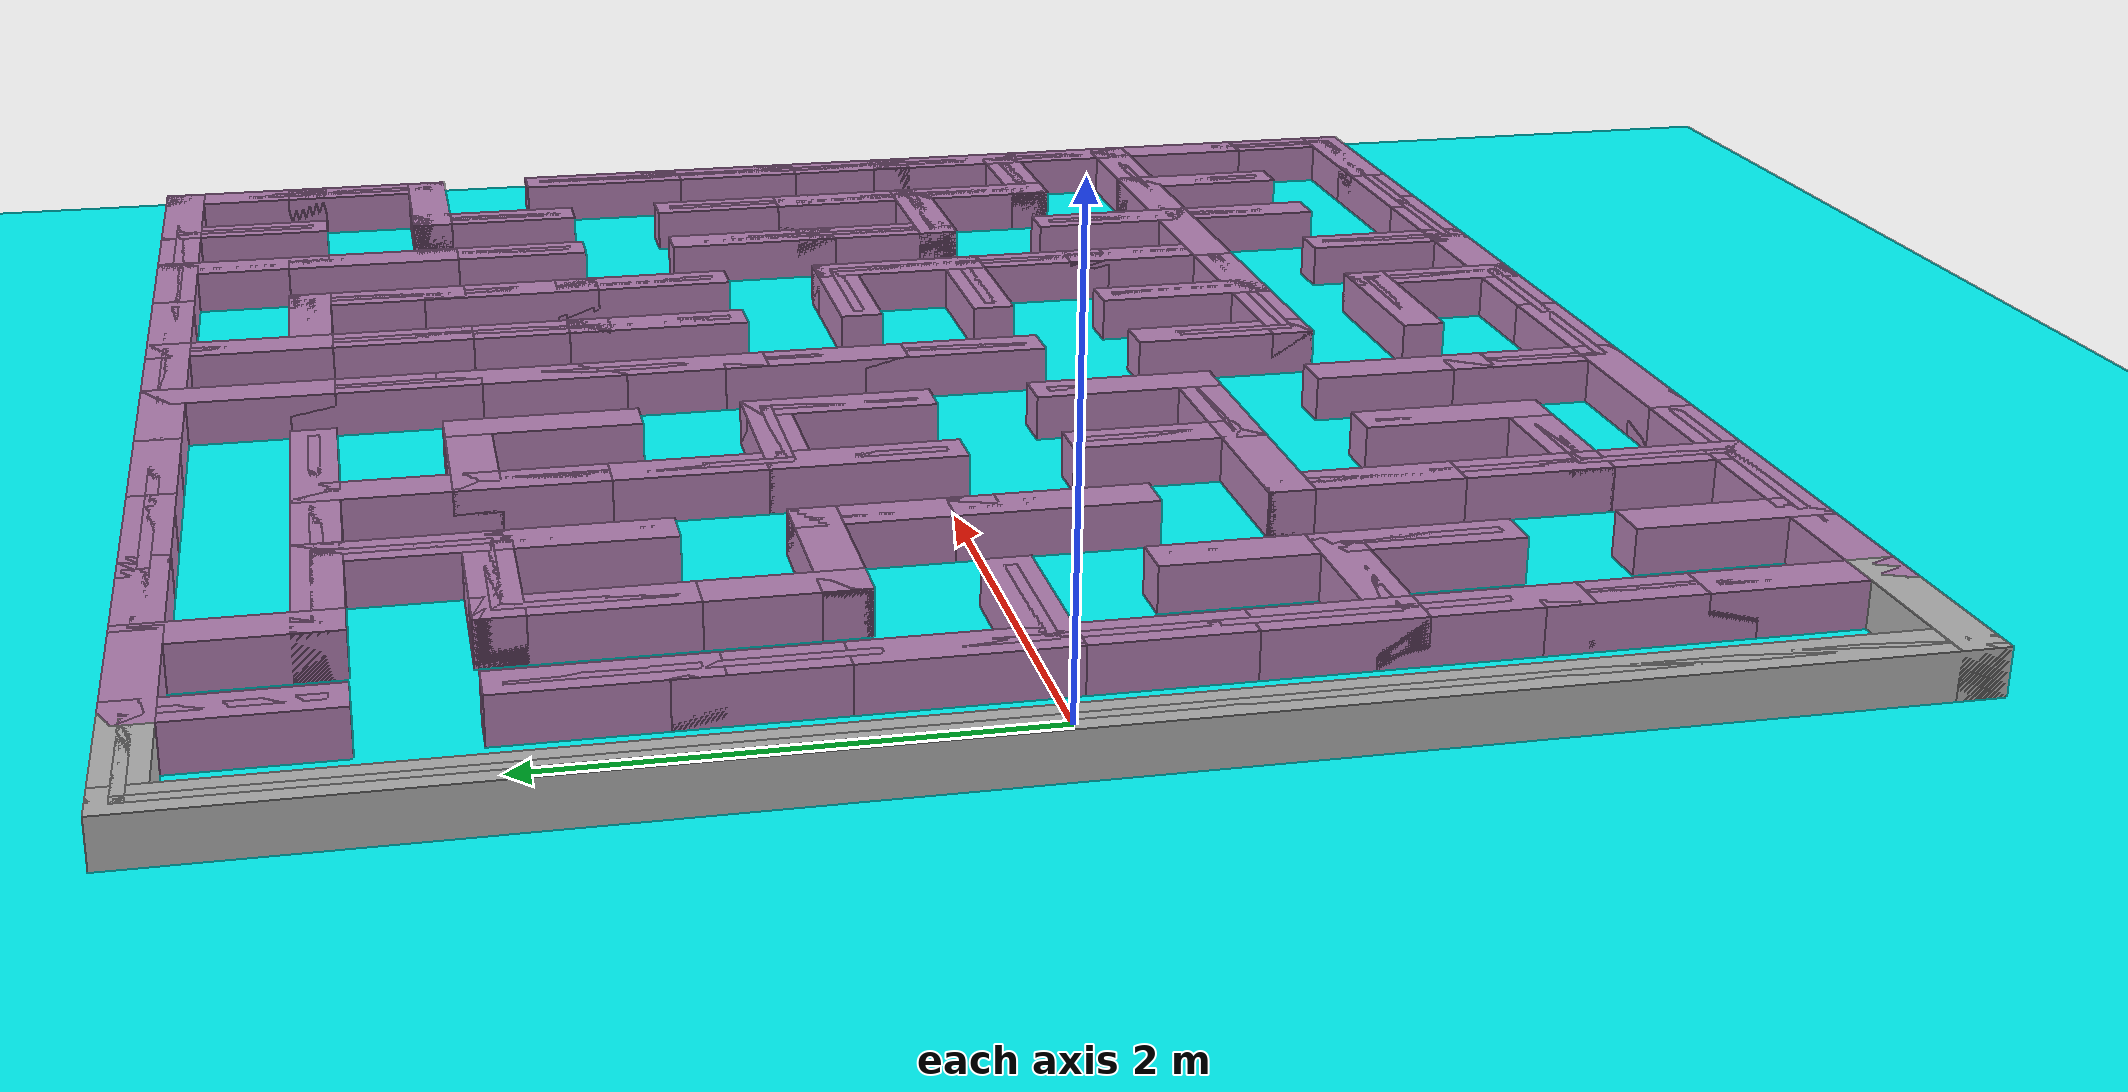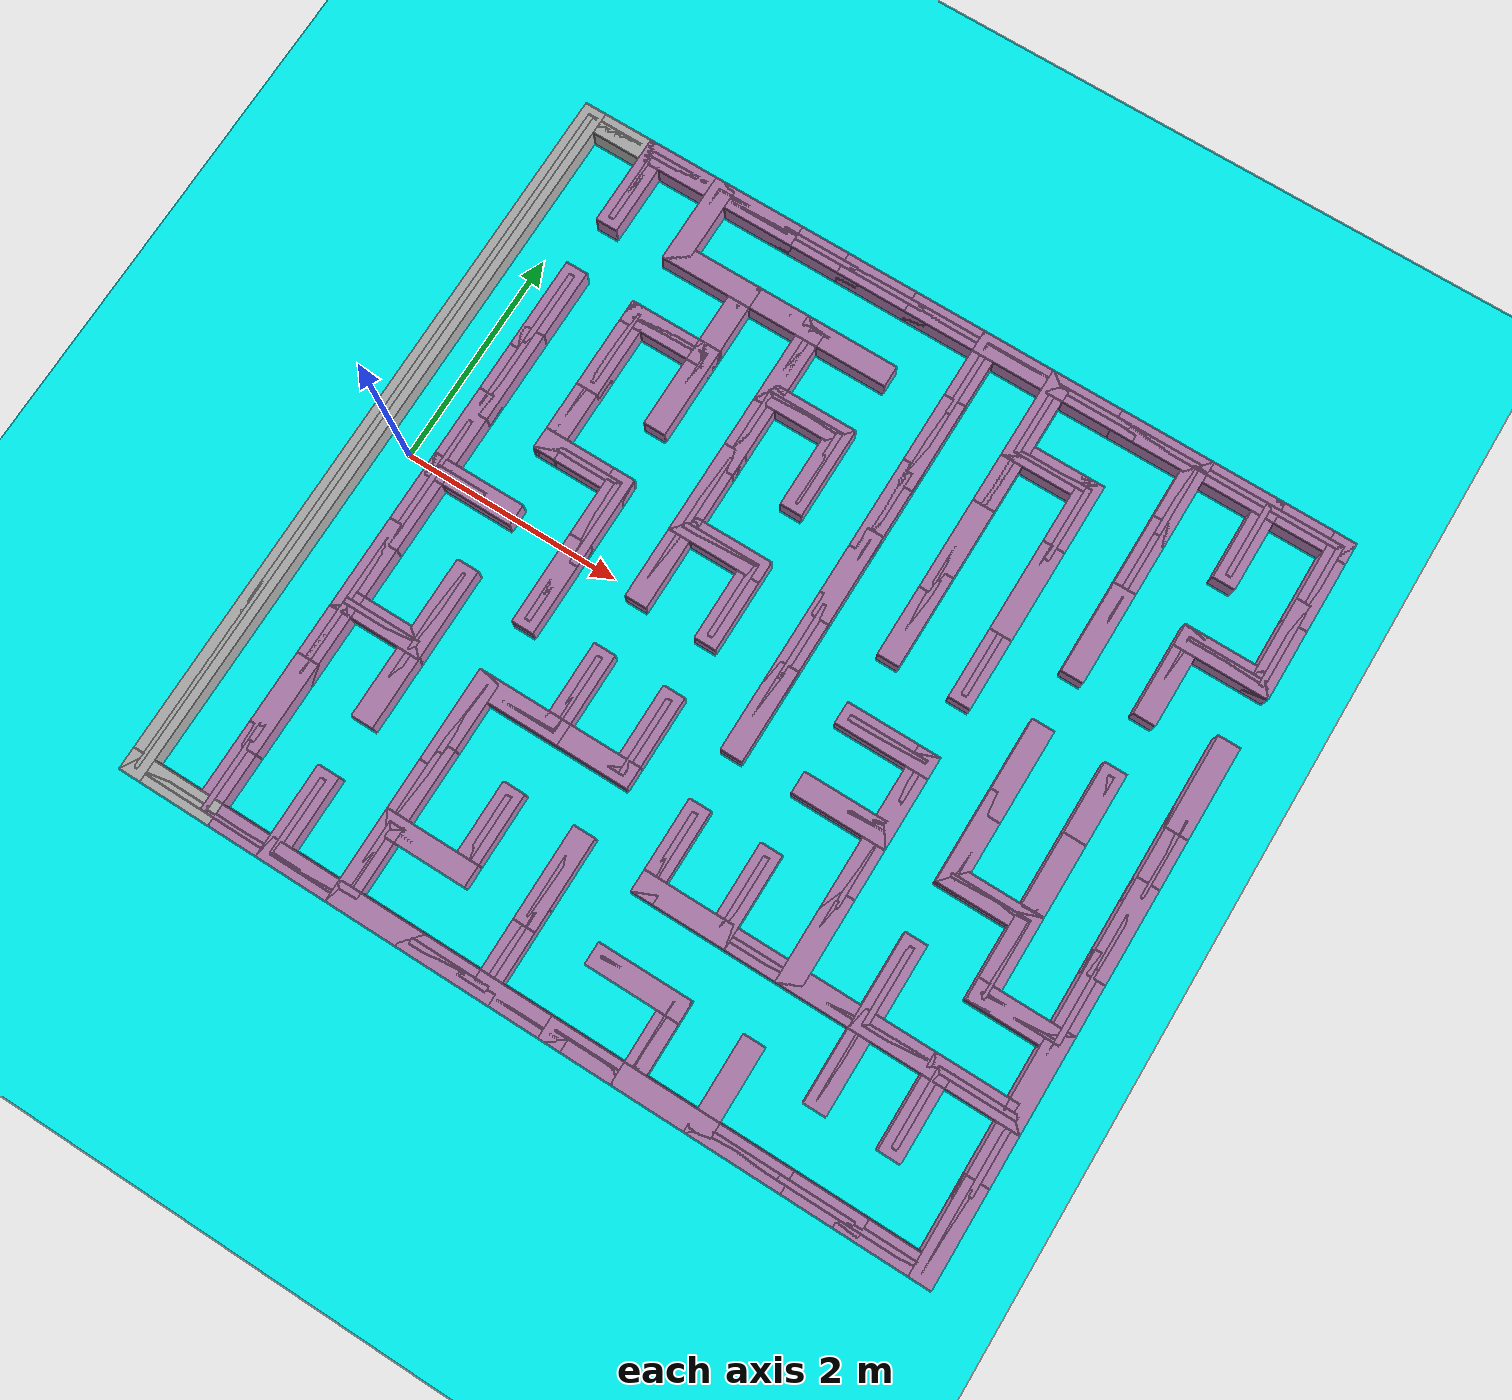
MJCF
<mujoco model="maze">
  <visual>
    <headlight diffuse="0.5 0.5 0.5" ambient="0.3 0.3 0.3" specular="0 0 0"/>
    <rgba haze="0.15 0.25 0.35 1"/>
    <global azimuth="0" elevation="0"/>
  </visual>

  <asset>
    <texture type="skybox" builtin="gradient" rgb1="0.3 0.5 0.7" rgb2="0 0 0" width="512" height="3072"/>
    <texture type="2d" name="groundplane" builtin="checker" mark="edge" rgb1="0.2 0.3 0.4" rgb2="0.1 0.2 0.3" markrgb="0.8 0.8 0.8" width="500" height="500"/>
    <material name="groundplane" texture="groundplane" texuniform="true" texrepeat="5 5" reflectance="0.2"/>
  </asset>
  <worldbody>
    <light pos="0.000 0.000 6.500" dir="0 0 -1"/>
    <light pos="0.325 3.250 6.500" dir="0 0 -1"/>
    <light pos="6.825 3.250 6.500" dir="0 0 -1"/>
    <light pos="0.325 -3.250 6.500" dir="0 0 -1"/>
    <light pos="6.825 -3.250 6.500" dir="0 0 -1"/>
    <light pos="3.575 0.000 6.500" dir="0 0 -1"/>
    <geom name="floor" type="plane" size="7.507500000000001 7.507500000000001 0.1" rgba="0 1 1 1"/>
    <geom name="maze_wall_0" type="box" pos="0.325 2.925 0.100" size="0.025 0.350 0.100" rgba="0.7 0.5 0.7 1.0"/>
    <geom name="maze_wall_1" type="box" pos="0.325 1.625 0.100" size="0.025 0.350 0.100" rgba="0.7 0.5 0.7 1.0"/>
    <geom name="maze_wall_2" type="box" pos="0.325 0.975 0.100" size="0.025 0.350 0.100" rgba="0.7 0.5 0.7 1.0"/>
    <geom name="maze_wall_3" type="box" pos="0.325 0.325 0.100" size="0.025 0.350 0.100" rgba="0.7 0.5 0.7 1.0"/>
    <geom name="maze_wall_4" type="box" pos="0.325 -0.325 0.100" size="0.025 0.350 0.100" rgba="0.7 0.5 0.7 1.0"/>
    <geom name="maze_wall_5" type="box" pos="0.325 -0.975 0.100" size="0.025 0.350 0.100" rgba="0.7 0.5 0.7 1.0"/>
    <geom name="maze_wall_6" type="box" pos="0.325 -1.625 0.100" size="0.025 0.350 0.100" rgba="0.7 0.5 0.7 1.0"/>
    <geom name="maze_wall_7" type="box" pos="0.325 -2.275 0.100" size="0.025 0.350 0.100" rgba="0.7 0.5 0.7 1.0"/>
    <geom name="maze_wall_8" type="box" pos="0.325 -2.925 0.100" size="0.025 0.350 0.100" rgba="0.7 0.5 0.7 1.0"/>
    <geom name="maze_wall_9" type="box" pos="0.975 2.925 0.100" size="0.025 0.350 0.100" rgba="0.7 0.5 0.7 1.0"/>
    <geom name="maze_wall_10" type="box" pos="0.975 1.625 0.100" size="0.025 0.350 0.100" rgba="0.7 0.5 0.7 1.0"/>
    <geom name="maze_wall_11" type="box" pos="0.975 0.975 0.100" size="0.025 0.350 0.100" rgba="0.7 0.5 0.7 1.0"/>
    <geom name="maze_wall_12" type="box" pos="0.975 -0.975 0.100" size="0.025 0.350 0.100" rgba="0.7 0.5 0.7 1.0"/>
    <geom name="maze_wall_13" type="box" pos="0.975 -1.625 0.100" size="0.025 0.350 0.100" rgba="0.7 0.5 0.7 1.0"/>
    <geom name="maze_wall_14" type="box" pos="0.975 -2.925 0.100" size="0.025 0.350 0.100" rgba="0.7 0.5 0.7 1.0"/>
    <geom name="maze_wall_15" type="box" pos="1.625 2.275 0.100" size="0.025 0.350 0.100" rgba="0.7 0.5 0.7 1.0"/>
    <geom name="maze_wall_16" type="box" pos="1.625 1.625 0.100" size="0.025 0.350 0.100" rgba="0.7 0.5 0.7 1.0"/>
    <geom name="maze_wall_17" type="box" pos="1.625 0.325 0.100" size="0.025 0.350 0.100" rgba="0.7 0.5 0.7 1.0"/>
    <geom name="maze_wall_18" type="box" pos="1.625 -0.325 0.100" size="0.025 0.350 0.100" rgba="0.7 0.5 0.7 1.0"/>
    <geom name="maze_wall_19" type="box" pos="1.625 -1.625 0.100" size="0.025 0.350 0.100" rgba="0.7 0.5 0.7 1.0"/>
    <geom name="maze_wall_20" type="box" pos="1.625 -2.275 0.100" size="0.025 0.350 0.100" rgba="0.7 0.5 0.7 1.0"/>
    <geom name="maze_wall_21" type="box" pos="1.625 -2.925 0.100" size="0.025 0.350 0.100" rgba="0.7 0.5 0.7 1.0"/>
    <geom name="maze_wall_22" type="box" pos="2.275 2.275 0.100" size="0.025 0.350 0.100" rgba="0.7 0.5 0.7 1.0"/>
    <geom name="maze_wall_23" type="box" pos="2.275 1.625 0.100" size="0.025 0.350 0.100" rgba="0.7 0.5 0.7 1.0"/>
    <geom name="maze_wall_24" type="box" pos="2.275 0.975 0.100" size="0.025 0.350 0.100" rgba="0.7 0.5 0.7 1.0"/>
    <geom name="maze_wall_25" type="box" pos="2.275 0.325 0.100" size="0.025 0.350 0.100" rgba="0.7 0.5 0.7 1.0"/>
    <geom name="maze_wall_26" type="box" pos="2.275 -0.975 0.100" size="0.025 0.350 0.100" rgba="0.7 0.5 0.7 1.0"/>
    <geom name="maze_wall_27" type="box" pos="2.275 -2.275 0.100" size="0.025 0.350 0.100" rgba="0.7 0.5 0.7 1.0"/>
    <geom name="maze_wall_28" type="box" pos="2.925 1.625 0.100" size="0.025 0.350 0.100" rgba="0.7 0.5 0.7 1.0"/>
    <geom name="maze_wall_29" type="box" pos="2.925 0.325 0.100" size="0.025 0.350 0.100" rgba="0.7 0.5 0.7 1.0"/>
    <geom name="maze_wall_30" type="box" pos="2.925 -0.975 0.100" size="0.025 0.350 0.100" rgba="0.7 0.5 0.7 1.0"/>
    <geom name="maze_wall_31" type="box" pos="2.925 -2.275 0.100" size="0.025 0.350 0.100" rgba="0.7 0.5 0.7 1.0"/>
    <geom name="maze_wall_32" type="box" pos="2.925 -2.925 0.100" size="0.025 0.350 0.100" rgba="0.7 0.5 0.7 1.0"/>
    <geom name="maze_wall_33" type="box" pos="3.575 2.925 0.100" size="0.025 0.350 0.100" rgba="0.7 0.5 0.7 1.0"/>
    <geom name="maze_wall_34" type="box" pos="3.575 2.275 0.100" size="0.025 0.350 0.100" rgba="0.7 0.5 0.7 1.0"/>
    <geom name="maze_wall_35" type="box" pos="3.575 1.625 0.100" size="0.025 0.350 0.100" rgba="0.7 0.5 0.7 1.0"/>
    <geom name="maze_wall_36" type="box" pos="3.575 0.975 0.100" size="0.025 0.350 0.100" rgba="0.7 0.5 0.7 1.0"/>
    <geom name="maze_wall_37" type="box" pos="3.575 0.325 0.100" size="0.025 0.350 0.100" rgba="0.7 0.5 0.7 1.0"/>
    <geom name="maze_wall_38" type="box" pos="3.575 -0.325 0.100" size="0.025 0.350 0.100" rgba="0.7 0.5 0.7 1.0"/>
    <geom name="maze_wall_39" type="box" pos="3.575 -1.625 0.100" size="0.025 0.350 0.100" rgba="0.7 0.5 0.7 1.0"/>
    <geom name="maze_wall_40" type="box" pos="4.225 2.925 0.100" size="0.025 0.350 0.100" rgba="0.7 0.5 0.7 1.0"/>
    <geom name="maze_wall_41" type="box" pos="4.225 2.275 0.100" size="0.025 0.350 0.100" rgba="0.7 0.5 0.7 1.0"/>
    <geom name="maze_wall_42" type="box" pos="4.225 1.625 0.100" size="0.025 0.350 0.100" rgba="0.7 0.5 0.7 1.0"/>
    <geom name="maze_wall_43" type="box" pos="4.225 0.975 0.100" size="0.025 0.350 0.100" rgba="0.7 0.5 0.7 1.0"/>
    <geom name="maze_wall_44" type="box" pos="4.225 -1.625 0.100" size="0.025 0.350 0.100" rgba="0.7 0.5 0.7 1.0"/>
    <geom name="maze_wall_45" type="box" pos="4.225 -2.925 0.100" size="0.025 0.350 0.100" rgba="0.7 0.5 0.7 1.0"/>
    <geom name="maze_wall_46" type="box" pos="4.875 2.275 0.100" size="0.025 0.350 0.100" rgba="0.7 0.5 0.7 1.0"/>
    <geom name="maze_wall_47" type="box" pos="4.875 1.625 0.100" size="0.025 0.350 0.100" rgba="0.7 0.5 0.7 1.0"/>
    <geom name="maze_wall_48" type="box" pos="4.875 0.975 0.100" size="0.025 0.350 0.100" rgba="0.7 0.5 0.7 1.0"/>
    <geom name="maze_wall_49" type="box" pos="4.875 -0.325 0.100" size="0.025 0.350 0.100" rgba="0.7 0.5 0.7 1.0"/>
    <geom name="maze_wall_50" type="box" pos="4.875 -0.975 0.100" size="0.025 0.350 0.100" rgba="0.7 0.5 0.7 1.0"/>
    <geom name="maze_wall_51" type="box" pos="4.875 -1.625 0.100" size="0.025 0.350 0.100" rgba="0.7 0.5 0.7 1.0"/>
    <geom name="maze_wall_52" type="box" pos="4.875 -2.925 0.100" size="0.025 0.350 0.100" rgba="0.7 0.5 0.7 1.0"/>
    <geom name="maze_wall_53" type="box" pos="5.525 2.925 0.100" size="0.025 0.350 0.100" rgba="0.7 0.5 0.7 1.0"/>
    <geom name="maze_wall_54" type="box" pos="5.525 2.275 0.100" size="0.025 0.350 0.100" rgba="0.7 0.5 0.7 1.0"/>
    <geom name="maze_wall_55" type="box" pos="5.525 1.625 0.100" size="0.025 0.350 0.100" rgba="0.7 0.5 0.7 1.0"/>
    <geom name="maze_wall_56" type="box" pos="5.525 0.325 0.100" size="0.025 0.350 0.100" rgba="0.7 0.5 0.7 1.0"/>
    <geom name="maze_wall_57" type="box" pos="5.525 -0.325 0.100" size="0.025 0.350 0.100" rgba="0.7 0.5 0.7 1.0"/>
    <geom name="maze_wall_58" type="box" pos="5.525 -1.625 0.100" size="0.025 0.350 0.100" rgba="0.7 0.5 0.7 1.0"/>
    <geom name="maze_wall_59" type="box" pos="5.525 -2.275 0.100" size="0.025 0.350 0.100" rgba="0.7 0.5 0.7 1.0"/>
    <geom name="maze_wall_60" type="box" pos="6.175 2.925 0.100" size="0.025 0.350 0.100" rgba="0.7 0.5 0.7 1.0"/>
    <geom name="maze_wall_61" type="box" pos="6.175 1.625 0.100" size="0.025 0.350 0.100" rgba="0.7 0.5 0.7 1.0"/>
    <geom name="maze_wall_62" type="box" pos="6.175 0.325 0.100" size="0.025 0.350 0.100" rgba="0.7 0.5 0.7 1.0"/>
    <geom name="maze_wall_63" type="box" pos="6.175 -0.325 0.100" size="0.025 0.350 0.100" rgba="0.7 0.5 0.7 1.0"/>
    <geom name="maze_wall_64" type="box" pos="6.175 -0.975 0.100" size="0.025 0.350 0.100" rgba="0.7 0.5 0.7 1.0"/>
    <geom name="maze_wall_65" type="box" pos="6.175 -2.275 0.100" size="0.025 0.350 0.100" rgba="0.7 0.5 0.7 1.0"/>
    <geom name="maze_wall_66" type="box" pos="6.825 2.925 0.100" size="0.025 0.350 0.100" rgba="0.7 0.5 0.7 1.0"/>
    <geom name="maze_wall_67" type="box" pos="6.825 2.275 0.100" size="0.025 0.350 0.100" rgba="0.7 0.5 0.7 1.0"/>
    <geom name="maze_wall_68" type="box" pos="6.825 0.975 0.100" size="0.025 0.350 0.100" rgba="0.7 0.5 0.7 1.0"/>
    <geom name="maze_wall_69" type="box" pos="6.825 0.325 0.100" size="0.025 0.350 0.100" rgba="0.7 0.5 0.7 1.0"/>
    <geom name="maze_wall_70" type="box" pos="6.825 -0.325 0.100" size="0.025 0.350 0.100" rgba="0.7 0.5 0.7 1.0"/>
    <geom name="maze_wall_71" type="box" pos="6.825 -0.975 0.100" size="0.025 0.350 0.100" rgba="0.7 0.5 0.7 1.0"/>
    <geom name="maze_wall_72" type="box" pos="6.825 -1.625 0.100" size="0.025 0.350 0.100" rgba="0.7 0.5 0.7 1.0"/>
    <geom name="maze_wall_73" type="box" pos="6.825 -2.275 0.100" size="0.025 0.350 0.100" rgba="0.7 0.5 0.7 1.0"/>
    <geom name="maze_wall_74" type="box" pos="6.825 -2.925 0.100" size="0.025 0.350 0.100" rgba="0.7 0.5 0.7 1.0"/>
    <geom name="maze_wall_75" type="box" pos="0.650 3.250 0.100" size="0.350 0.025 0.100" rgba="0.7 0.5 0.7 1.0"/>
    <geom name="maze_wall_76" type="box" pos="0.650 0.000 0.100" size="0.350 0.025 0.100" rgba="0.7 0.5 0.7 1.0"/>
    <geom name="maze_wall_77" type="box" pos="0.650 -1.300 0.100" size="0.350 0.025 0.100" rgba="0.7 0.5 0.7 1.0"/>
    <geom name="maze_wall_78" type="box" pos="0.650 -3.250 0.100" size="0.350 0.025 0.100" rgba="0.7 0.5 0.7 1.0"/>
    <geom name="maze_wall_79" type="box" pos="1.300 3.250 0.100" size="0.350 0.025 0.100" rgba="0.7 0.5 0.7 1.0"/>
    <geom name="maze_wall_80" type="box" pos="1.300 2.600 0.100" size="0.350 0.025 0.100" rgba="0.7 0.5 0.7 1.0"/>
    <geom name="maze_wall_81" type="box" pos="1.300 1.950 0.100" size="0.350 0.025 0.100" rgba="0.7 0.5 0.7 1.0"/>
    <geom name="maze_wall_82" type="box" pos="1.300 0.650 0.100" size="0.350 0.025 0.100" rgba="0.7 0.5 0.7 1.0"/>
    <geom name="maze_wall_83" type="box" pos="1.300 -3.250 0.100" size="0.350 0.025 0.100" rgba="0.7 0.5 0.7 1.0"/>
    <geom name="maze_wall_84" type="box" pos="1.950 3.250 0.100" size="0.350 0.025 0.100" rgba="0.7 0.5 0.7 1.0"/>
    <geom name="maze_wall_85" type="box" pos="1.950 2.600 0.100" size="0.350 0.025 0.100" rgba="0.7 0.5 0.7 1.0"/>
    <geom name="maze_wall_86" type="box" pos="1.950 -1.300 0.100" size="0.350 0.025 0.100" rgba="0.7 0.5 0.7 1.0"/>
    <geom name="maze_wall_87" type="box" pos="1.950 -2.600 0.100" size="0.350 0.025 0.100" rgba="0.7 0.5 0.7 1.0"/>
    <geom name="maze_wall_88" type="box" pos="1.950 -3.250 0.100" size="0.350 0.025 0.100" rgba="0.7 0.5 0.7 1.0"/>
    <geom name="maze_wall_89" type="box" pos="2.600 3.250 0.100" size="0.350 0.025 0.100" rgba="0.7 0.5 0.7 1.0"/>
    <geom name="maze_wall_90" type="box" pos="2.600 2.600 0.100" size="0.350 0.025 0.100" rgba="0.7 0.5 0.7 1.0"/>
    <geom name="maze_wall_91" type="box" pos="2.600 1.950 0.100" size="0.350 0.025 0.100" rgba="0.7 0.5 0.7 1.0"/>
    <geom name="maze_wall_92" type="box" pos="2.600 0.650 0.100" size="0.350 0.025 0.100" rgba="0.7 0.5 0.7 1.0"/>
    <geom name="maze_wall_93" type="box" pos="2.600 -1.300 0.100" size="0.350 0.025 0.100" rgba="0.7 0.5 0.7 1.0"/>
    <geom name="maze_wall_94" type="box" pos="2.600 -3.250 0.100" size="0.350 0.025 0.100" rgba="0.7 0.5 0.7 1.0"/>
    <geom name="maze_wall_95" type="box" pos="3.250 3.250 0.100" size="0.350 0.025 0.100" rgba="0.7 0.5 0.7 1.0"/>
    <geom name="maze_wall_96" type="box" pos="3.250 -3.250 0.100" size="0.350 0.025 0.100" rgba="0.7 0.5 0.7 1.0"/>
    <geom name="maze_wall_97" type="box" pos="3.900 3.250 0.100" size="0.350 0.025 0.100" rgba="0.7 0.5 0.7 1.0"/>
    <geom name="maze_wall_98" type="box" pos="3.900 -1.950 0.100" size="0.350 0.025 0.100" rgba="0.7 0.5 0.7 1.0"/>
    <geom name="maze_wall_99" type="box" pos="3.900 -2.600 0.100" size="0.350 0.025 0.100" rgba="0.7 0.5 0.7 1.0"/>
    <geom name="maze_wall_100" type="box" pos="3.900 -3.250 0.100" size="0.350 0.025 0.100" rgba="0.7 0.5 0.7 1.0"/>
    <geom name="maze_wall_101" type="box" pos="4.550 3.250 0.100" size="0.350 0.025 0.100" rgba="0.7 0.5 0.7 1.0"/>
    <geom name="maze_wall_102" type="box" pos="4.550 2.600 0.100" size="0.350 0.025 0.100" rgba="0.7 0.5 0.7 1.0"/>
    <geom name="maze_wall_103" type="box" pos="4.550 0.000 0.100" size="0.350 0.025 0.100" rgba="0.7 0.5 0.7 1.0"/>
    <geom name="maze_wall_104" type="box" pos="4.550 -0.650 0.100" size="0.350 0.025 0.100" rgba="0.7 0.5 0.7 1.0"/>
    <geom name="maze_wall_105" type="box" pos="4.550 -1.950 0.100" size="0.350 0.025 0.100" rgba="0.7 0.5 0.7 1.0"/>
    <geom name="maze_wall_106" type="box" pos="4.550 -3.250 0.100" size="0.350 0.025 0.100" rgba="0.7 0.5 0.7 1.0"/>
    <geom name="maze_wall_107" type="box" pos="5.200 3.250 0.100" size="0.350 0.025 0.100" rgba="0.7 0.5 0.7 1.0"/>
    <geom name="maze_wall_108" type="box" pos="5.200 -1.950 0.100" size="0.350 0.025 0.100" rgba="0.7 0.5 0.7 1.0"/>
    <geom name="maze_wall_109" type="box" pos="5.200 -3.250 0.100" size="0.350 0.025 0.100" rgba="0.7 0.5 0.7 1.0"/>
    <geom name="maze_wall_110" type="box" pos="5.850 3.250 0.100" size="0.350 0.025 0.100" rgba="0.7 0.5 0.7 1.0"/>
    <geom name="maze_wall_111" type="box" pos="5.850 -0.650 0.100" size="0.350 0.025 0.100" rgba="0.7 0.5 0.7 1.0"/>
    <geom name="maze_wall_112" type="box" pos="5.850 -1.950 0.100" size="0.350 0.025 0.100" rgba="0.7 0.5 0.7 1.0"/>
    <geom name="maze_wall_113" type="box" pos="5.850 -3.250 0.100" size="0.350 0.025 0.100" rgba="0.7 0.5 0.7 1.0"/>
    <geom name="maze_wall_114" type="box" pos="6.500 3.250 0.100" size="0.350 0.025 0.100" rgba="0.7 0.5 0.7 1.0"/>
    <geom name="maze_wall_115" type="box" pos="6.500 1.950 0.100" size="0.350 0.025 0.100" rgba="0.7 0.5 0.7 1.0"/>
    <geom name="maze_wall_116" type="box" pos="6.500 -1.300 0.100" size="0.350 0.025 0.100" rgba="0.7 0.5 0.7 1.0"/>
    <geom name="maze_wall_117" type="box" pos="6.500 -1.950 0.100" size="0.350 0.025 0.100" rgba="0.7 0.5 0.7 1.0"/>
    <geom name="maze_wall_118" type="box" pos="6.500 -3.250 0.100" size="0.350 0.025 0.100" rgba="0.7 0.5 0.7 1.0"/>
    <geom name="maze_wall_rear_extension" type="box" pos="-0.325 -0.000 0.100" size="0.025 3.275 0.100" rgba="0.7 0.7 0.7 1.0"/>
    <geom name="maze_wall_left_extension" type="box" pos="-0.000 3.250 0.100" size="0.350 0.025 0.100" rgba="0.7 0.7 0.7 1.0"/>
    <geom name="maze_wall_right_extension" type="box" pos="0.000 -3.250 0.100" size="0.350 0.025 0.100" rgba="0.7 0.7 0.7 1.0"/>
    <geom name="augm_maze_wall_0" type="box" pos="0.325 2.925 0.100" size="0.100 0.425 0.100" rgba="0.7 0.5 0.7 1.0"/>
    <geom name="augm_maze_wall_1" type="box" pos="0.325 1.625 0.100" size="0.100 0.425 0.100" rgba="0.7 0.5 0.7 1.0"/>
    <geom name="augm_maze_wall_2" type="box" pos="0.325 0.975 0.100" size="0.100 0.425 0.100" rgba="0.7 0.5 0.7 1.0"/>
    <geom name="augm_maze_wall_3" type="box" pos="0.325 0.325 0.100" size="0.100 0.425 0.100" rgba="0.7 0.5 0.7 1.0"/>
    <geom name="augm_maze_wall_4" type="box" pos="0.325 -0.325 0.100" size="0.100 0.425 0.100" rgba="0.7 0.5 0.7 1.0"/>
    <geom name="augm_maze_wall_5" type="box" pos="0.325 -0.975 0.100" size="0.100 0.425 0.100" rgba="0.7 0.5 0.7 1.0"/>
    <geom name="augm_maze_wall_6" type="box" pos="0.325 -1.625 0.100" size="0.100 0.425 0.100" rgba="0.7 0.5 0.7 1.0"/>
    <geom name="augm_maze_wall_7" type="box" pos="0.325 -2.275 0.100" size="0.100 0.425 0.100" rgba="0.7 0.5 0.7 1.0"/>
    <geom name="augm_maze_wall_8" type="box" pos="0.325 -2.925 0.100" size="0.100 0.425 0.100" rgba="0.7 0.5 0.7 1.0"/>
    <geom name="augm_maze_wall_9" type="box" pos="0.975 2.925 0.100" size="0.100 0.425 0.100" rgba="0.7 0.5 0.7 1.0"/>
    <geom name="augm_maze_wall_10" type="box" pos="0.975 1.625 0.100" size="0.100 0.425 0.100" rgba="0.7 0.5 0.7 1.0"/>
    <geom name="augm_maze_wall_11" type="box" pos="0.975 0.975 0.100" size="0.100 0.425 0.100" rgba="0.7 0.5 0.7 1.0"/>
    <geom name="augm_maze_wall_12" type="box" pos="0.975 -0.975 0.100" size="0.100 0.425 0.100" rgba="0.7 0.5 0.7 1.0"/>
    <geom name="augm_maze_wall_13" type="box" pos="0.975 -1.625 0.100" size="0.100 0.425 0.100" rgba="0.7 0.5 0.7 1.0"/>
    <geom name="augm_maze_wall_14" type="box" pos="0.975 -2.925 0.100" size="0.100 0.425 0.100" rgba="0.7 0.5 0.7 1.0"/>
    <geom name="augm_maze_wall_15" type="box" pos="1.625 2.275 0.100" size="0.100 0.425 0.100" rgba="0.7 0.5 0.7 1.0"/>
    <geom name="augm_maze_wall_16" type="box" pos="1.625 1.625 0.100" size="0.100 0.425 0.100" rgba="0.7 0.5 0.7 1.0"/>
    <geom name="augm_maze_wall_17" type="box" pos="1.625 0.325 0.100" size="0.100 0.425 0.100" rgba="0.7 0.5 0.7 1.0"/>
    <geom name="augm_maze_wall_18" type="box" pos="1.625 -0.325 0.100" size="0.100 0.425 0.100" rgba="0.7 0.5 0.7 1.0"/>
    <geom name="augm_maze_wall_19" type="box" pos="1.625 -1.625 0.100" size="0.100 0.425 0.100" rgba="0.7 0.5 0.7 1.0"/>
    <geom name="augm_maze_wall_20" type="box" pos="1.625 -2.275 0.100" size="0.100 0.425 0.100" rgba="0.7 0.5 0.7 1.0"/>
    <geom name="augm_maze_wall_21" type="box" pos="1.625 -2.925 0.100" size="0.100 0.425 0.100" rgba="0.7 0.5 0.7 1.0"/>
    <geom name="augm_maze_wall_22" type="box" pos="2.275 2.275 0.100" size="0.100 0.425 0.100" rgba="0.7 0.5 0.7 1.0"/>
    <geom name="augm_maze_wall_23" type="box" pos="2.275 1.625 0.100" size="0.100 0.425 0.100" rgba="0.7 0.5 0.7 1.0"/>
    <geom name="augm_maze_wall_24" type="box" pos="2.275 0.975 0.100" size="0.100 0.425 0.100" rgba="0.7 0.5 0.7 1.0"/>
    <geom name="augm_maze_wall_25" type="box" pos="2.275 0.325 0.100" size="0.100 0.425 0.100" rgba="0.7 0.5 0.7 1.0"/>
    <geom name="augm_maze_wall_26" type="box" pos="2.275 -0.975 0.100" size="0.100 0.425 0.100" rgba="0.7 0.5 0.7 1.0"/>
    <geom name="augm_maze_wall_27" type="box" pos="2.275 -2.275 0.100" size="0.100 0.425 0.100" rgba="0.7 0.5 0.7 1.0"/>
    <geom name="augm_maze_wall_28" type="box" pos="2.925 1.625 0.100" size="0.100 0.425 0.100" rgba="0.7 0.5 0.7 1.0"/>
    <geom name="augm_maze_wall_29" type="box" pos="2.925 0.325 0.100" size="0.100 0.425 0.100" rgba="0.7 0.5 0.7 1.0"/>
    <geom name="augm_maze_wall_30" type="box" pos="2.925 -0.975 0.100" size="0.100 0.425 0.100" rgba="0.7 0.5 0.7 1.0"/>
    <geom name="augm_maze_wall_31" type="box" pos="2.925 -2.275 0.100" size="0.100 0.425 0.100" rgba="0.7 0.5 0.7 1.0"/>
    <geom name="augm_maze_wall_32" type="box" pos="2.925 -2.925 0.100" size="0.100 0.425 0.100" rgba="0.7 0.5 0.7 1.0"/>
    <geom name="augm_maze_wall_33" type="box" pos="3.575 2.925 0.100" size="0.100 0.425 0.100" rgba="0.7 0.5 0.7 1.0"/>
    <geom name="augm_maze_wall_34" type="box" pos="3.575 2.275 0.100" size="0.100 0.425 0.100" rgba="0.7 0.5 0.7 1.0"/>
    <geom name="augm_maze_wall_35" type="box" pos="3.575 1.625 0.100" size="0.100 0.425 0.100" rgba="0.7 0.5 0.7 1.0"/>
    <geom name="augm_maze_wall_36" type="box" pos="3.575 0.975 0.100" size="0.100 0.425 0.100" rgba="0.7 0.5 0.7 1.0"/>
    <geom name="augm_maze_wall_37" type="box" pos="3.575 0.325 0.100" size="0.100 0.425 0.100" rgba="0.7 0.5 0.7 1.0"/>
    <geom name="augm_maze_wall_38" type="box" pos="3.575 -0.325 0.100" size="0.100 0.425 0.100" rgba="0.7 0.5 0.7 1.0"/>
    <geom name="augm_maze_wall_39" type="box" pos="3.575 -1.625 0.100" size="0.100 0.425 0.100" rgba="0.7 0.5 0.7 1.0"/>
    <geom name="augm_maze_wall_40" type="box" pos="4.225 2.925 0.100" size="0.100 0.425 0.100" rgba="0.7 0.5 0.7 1.0"/>
    <geom name="augm_maze_wall_41" type="box" pos="4.225 2.275 0.100" size="0.100 0.425 0.100" rgba="0.7 0.5 0.7 1.0"/>
    <geom name="augm_maze_wall_42" type="box" pos="4.225 1.625 0.100" size="0.100 0.425 0.100" rgba="0.7 0.5 0.7 1.0"/>
    <geom name="augm_maze_wall_43" type="box" pos="4.225 0.975 0.100" size="0.100 0.425 0.100" rgba="0.7 0.5 0.7 1.0"/>
    <geom name="augm_maze_wall_44" type="box" pos="4.225 -1.625 0.100" size="0.100 0.425 0.100" rgba="0.7 0.5 0.7 1.0"/>
    <geom name="augm_maze_wall_45" type="box" pos="4.225 -2.925 0.100" size="0.100 0.425 0.100" rgba="0.7 0.5 0.7 1.0"/>
    <geom name="augm_maze_wall_46" type="box" pos="4.875 2.275 0.100" size="0.100 0.425 0.100" rgba="0.7 0.5 0.7 1.0"/>
    <geom name="augm_maze_wall_47" type="box" pos="4.875 1.625 0.100" size="0.100 0.425 0.100" rgba="0.7 0.5 0.7 1.0"/>
    <geom name="augm_maze_wall_48" type="box" pos="4.875 0.975 0.100" size="0.100 0.425 0.100" rgba="0.7 0.5 0.7 1.0"/>
    <geom name="augm_maze_wall_49" type="box" pos="4.875 -0.325 0.100" size="0.100 0.425 0.100" rgba="0.7 0.5 0.7 1.0"/>
    <geom name="augm_maze_wall_50" type="box" pos="4.875 -0.975 0.100" size="0.100 0.425 0.100" rgba="0.7 0.5 0.7 1.0"/>
    <geom name="augm_maze_wall_51" type="box" pos="4.875 -1.625 0.100" size="0.100 0.425 0.100" rgba="0.7 0.5 0.7 1.0"/>
    <geom name="augm_maze_wall_52" type="box" pos="4.875 -2.925 0.100" size="0.100 0.425 0.100" rgba="0.7 0.5 0.7 1.0"/>
    <geom name="augm_maze_wall_53" type="box" pos="5.525 2.925 0.100" size="0.100 0.425 0.100" rgba="0.7 0.5 0.7 1.0"/>
    <geom name="augm_maze_wall_54" type="box" pos="5.525 2.275 0.100" size="0.100 0.425 0.100" rgba="0.7 0.5 0.7 1.0"/>
    <geom name="augm_maze_wall_55" type="box" pos="5.525 1.625 0.100" size="0.100 0.425 0.100" rgba="0.7 0.5 0.7 1.0"/>
    <geom name="augm_maze_wall_56" type="box" pos="5.525 0.325 0.100" size="0.100 0.425 0.100" rgba="0.7 0.5 0.7 1.0"/>
    <geom name="augm_maze_wall_57" type="box" pos="5.525 -0.325 0.100" size="0.100 0.425 0.100" rgba="0.7 0.5 0.7 1.0"/>
    <geom name="augm_maze_wall_58" type="box" pos="5.525 -1.625 0.100" size="0.100 0.425 0.100" rgba="0.7 0.5 0.7 1.0"/>
    <geom name="augm_maze_wall_59" type="box" pos="5.525 -2.275 0.100" size="0.100 0.425 0.100" rgba="0.7 0.5 0.7 1.0"/>
    <geom name="augm_maze_wall_60" type="box" pos="6.175 2.925 0.100" size="0.100 0.425 0.100" rgba="0.7 0.5 0.7 1.0"/>
    <geom name="augm_maze_wall_61" type="box" pos="6.175 1.625 0.100" size="0.100 0.425 0.100" rgba="0.7 0.5 0.7 1.0"/>
    <geom name="augm_maze_wall_62" type="box" pos="6.175 0.325 0.100" size="0.100 0.425 0.100" rgba="0.7 0.5 0.7 1.0"/>
    <geom name="augm_maze_wall_63" type="box" pos="6.175 -0.325 0.100" size="0.100 0.425 0.100" rgba="0.7 0.5 0.7 1.0"/>
    <geom name="augm_maze_wall_64" type="box" pos="6.175 -0.975 0.100" size="0.100 0.425 0.100" rgba="0.7 0.5 0.7 1.0"/>
    <geom name="augm_maze_wall_65" type="box" pos="6.175 -2.275 0.100" size="0.100 0.425 0.100" rgba="0.7 0.5 0.7 1.0"/>
    <geom name="augm_maze_wall_66" type="box" pos="6.825 2.925 0.100" size="0.100 0.425 0.100" rgba="0.7 0.5 0.7 1.0"/>
    <geom name="augm_maze_wall_67" type="box" pos="6.825 2.275 0.100" size="0.100 0.425 0.100" rgba="0.7 0.5 0.7 1.0"/>
    <geom name="augm_maze_wall_68" type="box" pos="6.825 0.975 0.100" size="0.100 0.425 0.100" rgba="0.7 0.5 0.7 1.0"/>
    <geom name="augm_maze_wall_69" type="box" pos="6.825 0.325 0.100" size="0.100 0.425 0.100" rgba="0.7 0.5 0.7 1.0"/>
    <geom name="augm_maze_wall_70" type="box" pos="6.825 -0.325 0.100" size="0.100 0.425 0.100" rgba="0.7 0.5 0.7 1.0"/>
    <geom name="augm_maze_wall_71" type="box" pos="6.825 -0.975 0.100" size="0.100 0.425 0.100" rgba="0.7 0.5 0.7 1.0"/>
    <geom name="augm_maze_wall_72" type="box" pos="6.825 -1.625 0.100" size="0.100 0.425 0.100" rgba="0.7 0.5 0.7 1.0"/>
    <geom name="augm_maze_wall_73" type="box" pos="6.825 -2.275 0.100" size="0.100 0.425 0.100" rgba="0.7 0.5 0.7 1.0"/>
    <geom name="augm_maze_wall_74" type="box" pos="6.825 -2.925 0.100" size="0.100 0.425 0.100" rgba="0.7 0.5 0.7 1.0"/>
    <geom name="augm_maze_wall_75" type="box" pos="0.650 3.250 0.100" size="0.425 0.100 0.100" rgba="0.7 0.5 0.7 1.0"/>
    <geom name="augm_maze_wall_76" type="box" pos="0.650 0.000 0.100" size="0.425 0.100 0.100" rgba="0.7 0.5 0.7 1.0"/>
    <geom name="augm_maze_wall_77" type="box" pos="0.650 -1.300 0.100" size="0.425 0.100 0.100" rgba="0.7 0.5 0.7 1.0"/>
    <geom name="augm_maze_wall_78" type="box" pos="0.650 -3.250 0.100" size="0.425 0.100 0.100" rgba="0.7 0.5 0.7 1.0"/>
    <geom name="augm_maze_wall_79" type="box" pos="1.300 3.250 0.100" size="0.425 0.100 0.100" rgba="0.7 0.5 0.7 1.0"/>
    <geom name="augm_maze_wall_80" type="box" pos="1.300 2.600 0.100" size="0.425 0.100 0.100" rgba="0.7 0.5 0.7 1.0"/>
    <geom name="augm_maze_wall_81" type="box" pos="1.300 1.950 0.100" size="0.425 0.100 0.100" rgba="0.7 0.5 0.7 1.0"/>
    <geom name="augm_maze_wall_82" type="box" pos="1.300 0.650 0.100" size="0.425 0.100 0.100" rgba="0.7 0.5 0.7 1.0"/>
    <geom name="augm_maze_wall_83" type="box" pos="1.300 -3.250 0.100" size="0.425 0.100 0.100" rgba="0.7 0.5 0.7 1.0"/>
    <geom name="augm_maze_wall_84" type="box" pos="1.950 3.250 0.100" size="0.425 0.100 0.100" rgba="0.7 0.5 0.7 1.0"/>
    <geom name="augm_maze_wall_85" type="box" pos="1.950 2.600 0.100" size="0.425 0.100 0.100" rgba="0.7 0.5 0.7 1.0"/>
    <geom name="augm_maze_wall_86" type="box" pos="1.950 -1.300 0.100" size="0.425 0.100 0.100" rgba="0.7 0.5 0.7 1.0"/>
    <geom name="augm_maze_wall_87" type="box" pos="1.950 -2.600 0.100" size="0.425 0.100 0.100" rgba="0.7 0.5 0.7 1.0"/>
    <geom name="augm_maze_wall_88" type="box" pos="1.950 -3.250 0.100" size="0.425 0.100 0.100" rgba="0.7 0.5 0.7 1.0"/>
    <geom name="augm_maze_wall_89" type="box" pos="2.600 3.250 0.100" size="0.425 0.100 0.100" rgba="0.7 0.5 0.7 1.0"/>
    <geom name="augm_maze_wall_90" type="box" pos="2.600 2.600 0.100" size="0.425 0.100 0.100" rgba="0.7 0.5 0.7 1.0"/>
    <geom name="augm_maze_wall_91" type="box" pos="2.600 1.950 0.100" size="0.425 0.100 0.100" rgba="0.7 0.5 0.7 1.0"/>
    <geom name="augm_maze_wall_92" type="box" pos="2.600 0.650 0.100" size="0.425 0.100 0.100" rgba="0.7 0.5 0.7 1.0"/>
    <geom name="augm_maze_wall_93" type="box" pos="2.600 -1.300 0.100" size="0.425 0.100 0.100" rgba="0.7 0.5 0.7 1.0"/>
    <geom name="augm_maze_wall_94" type="box" pos="2.600 -3.250 0.100" size="0.425 0.100 0.100" rgba="0.7 0.5 0.7 1.0"/>
    <geom name="augm_maze_wall_95" type="box" pos="3.250 3.250 0.100" size="0.425 0.100 0.100" rgba="0.7 0.5 0.7 1.0"/>
    <geom name="augm_maze_wall_96" type="box" pos="3.250 -3.250 0.100" size="0.425 0.100 0.100" rgba="0.7 0.5 0.7 1.0"/>
    <geom name="augm_maze_wall_97" type="box" pos="3.900 3.250 0.100" size="0.425 0.100 0.100" rgba="0.7 0.5 0.7 1.0"/>
    <geom name="augm_maze_wall_98" type="box" pos="3.900 -1.950 0.100" size="0.425 0.100 0.100" rgba="0.7 0.5 0.7 1.0"/>
    <geom name="augm_maze_wall_99" type="box" pos="3.900 -2.600 0.100" size="0.425 0.100 0.100" rgba="0.7 0.5 0.7 1.0"/>
    <geom name="augm_maze_wall_100" type="box" pos="3.900 -3.250 0.100" size="0.425 0.100 0.100" rgba="0.7 0.5 0.7 1.0"/>
    <geom name="augm_maze_wall_101" type="box" pos="4.550 3.250 0.100" size="0.425 0.100 0.100" rgba="0.7 0.5 0.7 1.0"/>
    <geom name="augm_maze_wall_102" type="box" pos="4.550 2.600 0.100" size="0.425 0.100 0.100" rgba="0.7 0.5 0.7 1.0"/>
    <geom name="augm_maze_wall_103" type="box" pos="4.550 0.000 0.100" size="0.425 0.100 0.100" rgba="0.7 0.5 0.7 1.0"/>
    <geom name="augm_maze_wall_104" type="box" pos="4.550 -0.650 0.100" size="0.425 0.100 0.100" rgba="0.7 0.5 0.7 1.0"/>
    <geom name="augm_maze_wall_105" type="box" pos="4.550 -1.950 0.100" size="0.425 0.100 0.100" rgba="0.7 0.5 0.7 1.0"/>
    <geom name="augm_maze_wall_106" type="box" pos="4.550 -3.250 0.100" size="0.425 0.100 0.100" rgba="0.7 0.5 0.7 1.0"/>
    <geom name="augm_maze_wall_107" type="box" pos="5.200 3.250 0.100" size="0.425 0.100 0.100" rgba="0.7 0.5 0.7 1.0"/>
    <geom name="augm_maze_wall_108" type="box" pos="5.200 -1.950 0.100" size="0.425 0.100 0.100" rgba="0.7 0.5 0.7 1.0"/>
    <geom name="augm_maze_wall_109" type="box" pos="5.200 -3.250 0.100" size="0.425 0.100 0.100" rgba="0.7 0.5 0.7 1.0"/>
    <geom name="augm_maze_wall_110" type="box" pos="5.850 3.250 0.100" size="0.425 0.100 0.100" rgba="0.7 0.5 0.7 1.0"/>
    <geom name="augm_maze_wall_111" type="box" pos="5.850 -0.650 0.100" size="0.425 0.100 0.100" rgba="0.7 0.5 0.7 1.0"/>
    <geom name="augm_maze_wall_112" type="box" pos="5.850 -1.950 0.100" size="0.425 0.100 0.100" rgba="0.7 0.5 0.7 1.0"/>
    <geom name="augm_maze_wall_113" type="box" pos="5.850 -3.250 0.100" size="0.425 0.100 0.100" rgba="0.7 0.5 0.7 1.0"/>
    <geom name="augm_maze_wall_114" type="box" pos="6.500 3.250 0.100" size="0.425 0.100 0.100" rgba="0.7 0.5 0.7 1.0"/>
    <geom name="augm_maze_wall_115" type="box" pos="6.500 1.950 0.100" size="0.425 0.100 0.100" rgba="0.7 0.5 0.7 1.0"/>
    <geom name="augm_maze_wall_116" type="box" pos="6.500 -1.300 0.100" size="0.425 0.100 0.100" rgba="0.7 0.5 0.7 1.0"/>
    <geom name="augm_maze_wall_117" type="box" pos="6.500 -1.950 0.100" size="0.425 0.100 0.100" rgba="0.7 0.5 0.7 1.0"/>
    <geom name="augm_maze_wall_118" type="box" pos="6.500 -3.250 0.100" size="0.425 0.100 0.100" rgba="0.7 0.5 0.7 1.0"/>
    <geom name="augm_maze_wall_rear_extension" type="box" pos="-0.325 -0.000 0.100" size="0.100 3.350 0.100" rgba="0.7 0.7 0.7 1.0"/>
    <geom name="augm_maze_wall_left_extension" type="box" pos="-0.000 3.250 0.100" size="0.425 0.100 0.100" rgba="0.7 0.7 0.7 1.0"/>
    <geom name="augm_maze_wall_right_extension" type="box" pos="0.000 -3.250 0.100" size="0.425 0.100 0.100" rgba="0.7 0.7 0.7 1.0"/>
  </worldbody>
</mujoco>
